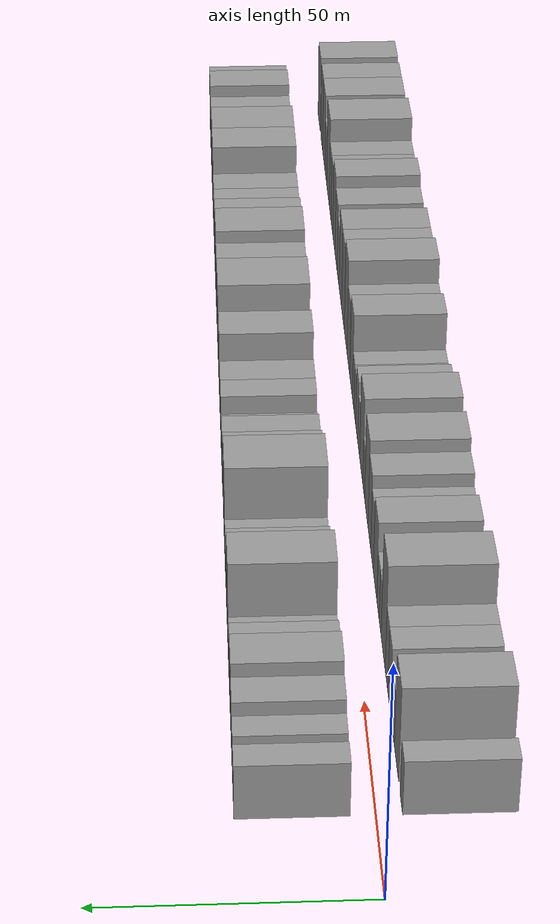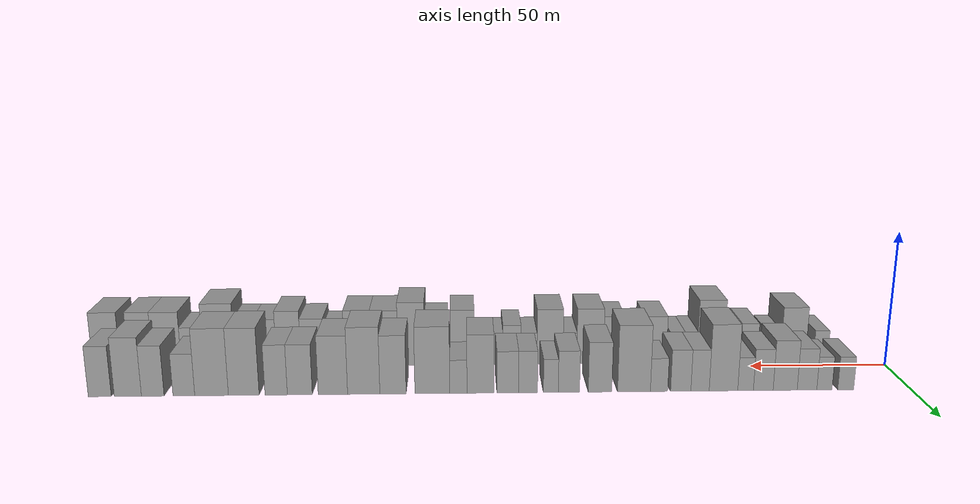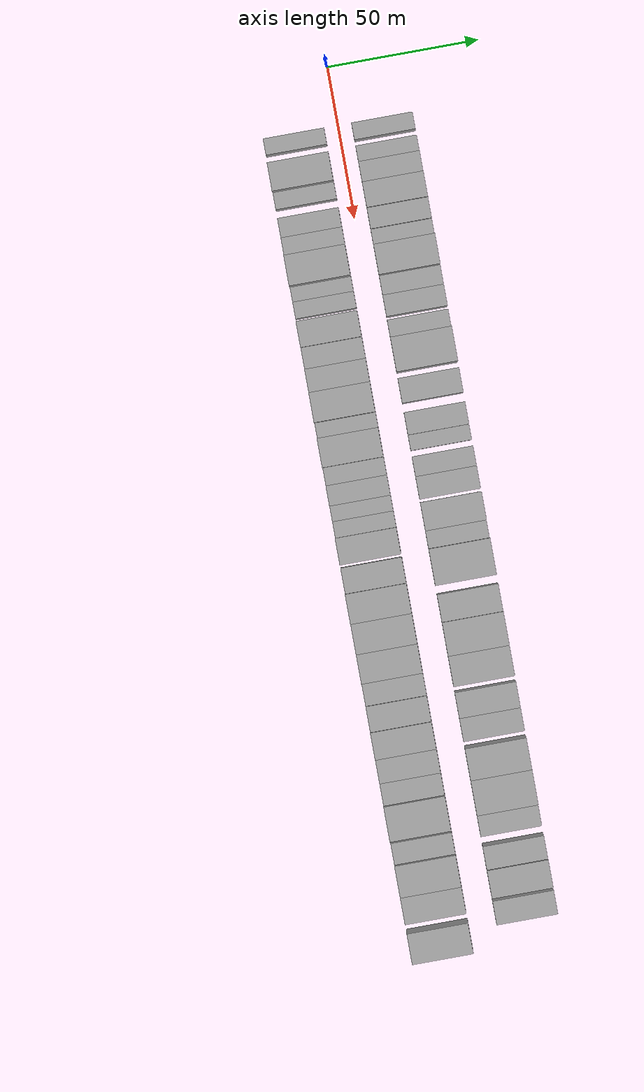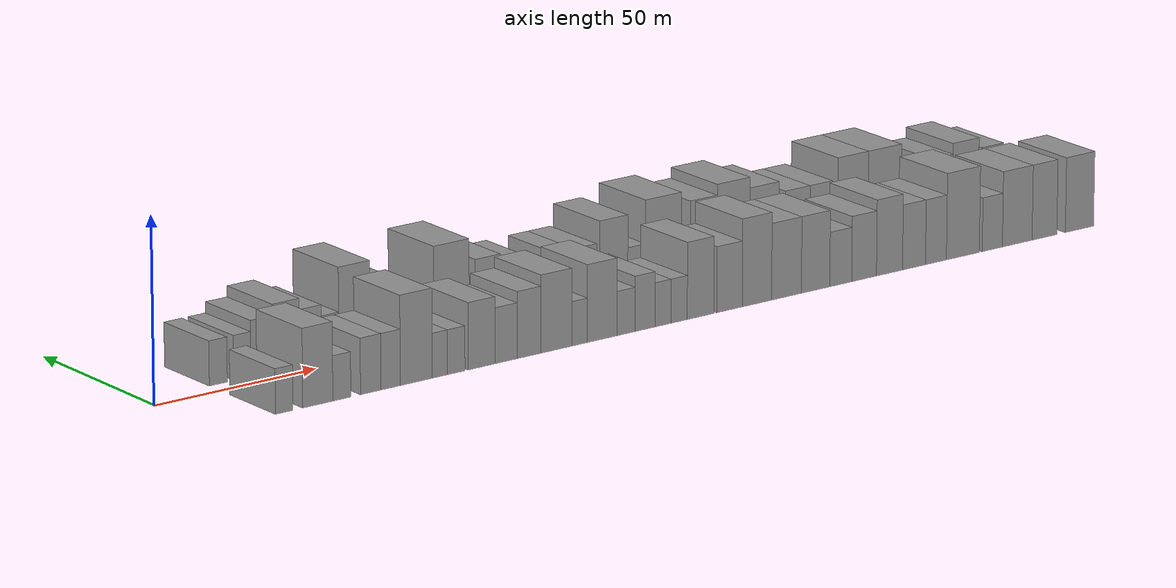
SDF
<sdf version="1.6">
 <world name="default">
  <scene>
   <sky><clouds><speed>12</speed></clouds></sky>
   <ambient>0.4 0.4 0.4 1</ambient>
   <background>0.7 0.7 0.7 1</background>
   <shadows>1</shadows>
  </scene>
  <gravity>0 0 -9.8066</gravity>
  <magnetic_field>6e-06 2.3e-05 -4.2e-05</magnetic_field>
  <physics default="0" name="default_physics" type="ode">
   <ode>
    <solver>
     <type>quick</type>
     <iters>10</iters>
     <sor>1.0</sor>
     <use_dynamic_moi_rescaling>0</use_dynamic_moi_rescaling>
    </solver>
    <constraints>
     <cfm>0</cfm>
     <erp>0.2</erp>
     <contact_max_correcting_vel>100</contact_max_correcting_vel>
     <contact_surface_layer>0.001</contact_surface_layer>
    </constraints>
   </ode>
   <max_step_size>0.004</max_step_size>
   <real_time_factor>1</real_time_factor>
   <real_time_update_rate>250</real_time_update_rate>
  </physics>
  <light name="sun" type="directional">
   <pose>0 0 10 0 0 0</pose>
   <diffuse>0.8 0.8 0.8 1</diffuse>
   <specular>0.2 0.2 0.2 1</specular>
   <attenuation>
    <range>1000</range>
    <constant>0.9</constant>
    <linear>0.01</linear>
    <quadratic>0.001</quadratic>
   </attenuation>
   <direction>-0.5 0.1 -0.9</direction>
  </light>
  <model name="building_1">
   <static>1</static>
   <pose>22.7822 14.5000 0 0.000000 0.000000 1.570796</pose>
   <link name="link">
    <pose>0 0 6.00 0 0 0</pose>
    <collision name="collision"><geometry><box><size>20.0000 5.5644 12.0000</size></box></geometry></collision>
    <visual name="visual">
     <cast_shadows>0</cast_shadows>
     <geometry><box><size>20.0000 5.5644 12.0000</size></box></geometry>
     <material>
      <script>
       <uri>model://grey_wall/materials/scripts</uri>
       <uri>model://grey_wall/materials/textures</uri>
       <name>vrc/grey_wall</name>
      </script>
     </material>
    </visual>
   </link>
  </model>
  <model name="building_2">
   <static>1</static>
   <pose>30.2250 14.5000 0 0.000000 0.000000 1.570796</pose>
   <link name="link">
    <pose>0 0 6.00 0 0 0</pose>
    <collision name="collision"><geometry><box><size>20.0000 5.3212 12.0000</size></box></geometry></collision>
    <visual name="visual">
     <cast_shadows>0</cast_shadows>
     <geometry><box><size>20.0000 5.3212 12.0000</size></box></geometry>
     <material>
      <script>
       <uri>model://grey_wall/materials/scripts</uri>
       <uri>model://grey_wall/materials/textures</uri>
       <name>vrc/grey_wall</name>
      </script>
     </material>
    </visual>
   </link>
  </model>
  <model name="building_3">
   <static>1</static>
   <pose>36.3001 14.5000 0 0.000000 0.000000 1.570796</pose>
   <link name="link">
    <pose>0 0 7.50 0 0 0</pose>
    <collision name="collision"><geometry><box><size>20.0000 6.8291 15.0000</size></box></geometry></collision>
    <visual name="visual">
     <cast_shadows>0</cast_shadows>
     <geometry><box><size>20.0000 6.8291 15.0000</size></box></geometry>
     <material>
      <script>
       <uri>model://grey_wall/materials/scripts</uri>
       <uri>model://grey_wall/materials/textures</uri>
       <name>vrc/grey_wall</name>
      </script>
     </material>
    </visual>
   </link>
  </model>
  <model name="building_4">
   <static>1</static>
   <pose>43.8990 14.5000 0 0.000000 0.000000 1.570796</pose>
   <link name="link">
    <pose>0 0 9.00 0 0 0</pose>
    <collision name="collision"><geometry><box><size>20.0000 8.3686 18.0000</size></box></geometry></collision>
    <visual name="visual">
     <cast_shadows>0</cast_shadows>
     <geometry><box><size>20.0000 8.3686 18.0000</size></box></geometry>
     <material>
      <script>
       <uri>model://grey_wall/materials/scripts</uri>
       <uri>model://grey_wall/materials/textures</uri>
       <name>vrc/grey_wall</name>
      </script>
     </material>
    </visual>
   </link>
  </model>
  <model name="building_5">
   <static>1</static>
   <pose>51.5162 14.5000 0 0.000000 0.000000 1.570796</pose>
   <link name="link">
    <pose>0 0 7.50 0 0 0</pose>
    <collision name="collision"><geometry><box><size>20.0000 6.8658 15.0000</size></box></geometry></collision>
    <visual name="visual">
     <cast_shadows>0</cast_shadows>
     <geometry><box><size>20.0000 6.8658 15.0000</size></box></geometry>
     <material>
      <script>
       <uri>model://grey_wall/materials/scripts</uri>
       <uri>model://grey_wall/materials/textures</uri>
       <name>vrc/grey_wall</name>
      </script>
     </material>
    </visual>
   </link>
  </model>
  <model name="building_6">
   <static>1</static>
   <pose>57.6712 14.5000 0 0.000000 0.000000 1.570796</pose>
   <link name="link">
    <pose>0 0 6.00 0 0 0</pose>
    <collision name="collision"><geometry><box><size>20.0000 5.4442 12.0000</size></box></geometry></collision>
    <visual name="visual">
     <cast_shadows>0</cast_shadows>
     <geometry><box><size>20.0000 5.4442 12.0000</size></box></geometry>
     <material>
      <script>
       <uri>model://grey_wall/materials/scripts</uri>
       <uri>model://grey_wall/materials/textures</uri>
       <name>vrc/grey_wall</name>
      </script>
     </material>
    </visual>
   </link>
  </model>
  <model name="building_7">
   <static>1</static>
   <pose>65.3493 14.5000 0 0.000000 0.000000 1.570796</pose>
   <link name="link">
    <pose>0 0 12.00 0 0 0</pose>
    <collision name="collision"><geometry><box><size>20.0000 9.9121 24.0000</size></box></geometry></collision>
    <visual name="visual">
     <cast_shadows>0</cast_shadows>
     <geometry><box><size>20.0000 9.9121 24.0000</size></box></geometry>
     <material>
      <script>
       <uri>model://grey_wall/materials/scripts</uri>
       <uri>model://grey_wall/materials/textures</uri>
       <name>vrc/grey_wall</name>
      </script>
     </material>
    </visual>
   </link>
  </model>
  <model name="building_8">
   <static>1</static>
   <pose>73.4739 14.5000 0 0.000000 0.000000 1.570796</pose>
   <link name="link">
    <pose>0 0 7.50 0 0 0</pose>
    <collision name="collision"><geometry><box><size>20.0000 6.3371 15.0000</size></box></geometry></collision>
    <visual name="visual">
     <cast_shadows>0</cast_shadows>
     <geometry><box><size>20.0000 6.3371 15.0000</size></box></geometry>
     <material>
      <script>
       <uri>model://grey_wall/materials/scripts</uri>
       <uri>model://grey_wall/materials/textures</uri>
       <name>vrc/grey_wall</name>
      </script>
     </material>
    </visual>
   </link>
  </model>
  <model name="building_9">
   <static>1</static>
   <pose>80.1584 14.5000 0 0.000000 0.000000 1.570796</pose>
   <link name="link">
    <pose>0 0 7.50 0 0 0</pose>
    <collision name="collision"><geometry><box><size>20.0000 7.0319 15.0000</size></box></geometry></collision>
    <visual name="visual">
     <cast_shadows>0</cast_shadows>
     <geometry><box><size>20.0000 7.0319 15.0000</size></box></geometry>
     <material>
      <script>
       <uri>model://grey_wall/materials/scripts</uri>
       <uri>model://grey_wall/materials/textures</uri>
       <name>vrc/grey_wall</name>
      </script>
     </material>
    </visual>
   </link>
  </model>
  <model name="building_10">
   <static>1</static>
   <pose>87.6701 14.5000 0 0.000000 0.000000 1.570796</pose>
   <link name="link">
    <pose>0 0 6.00 0 0 0</pose>
    <collision name="collision"><geometry><box><size>20.0000 5.9915 12.0000</size></box></geometry></collision>
    <visual name="visual">
     <cast_shadows>0</cast_shadows>
     <geometry><box><size>20.0000 5.9915 12.0000</size></box></geometry>
     <material>
      <script>
       <uri>model://grey_wall/materials/scripts</uri>
       <uri>model://grey_wall/materials/textures</uri>
       <name>vrc/grey_wall</name>
      </script>
     </material>
    </visual>
   </link>
  </model>
  <model name="building_11">
   <static>1</static>
   <pose>96.3384 14.5000 0 0.000000 0.000000 1.570796</pose>
   <link name="link">
    <pose>0 0 12.00 0 0 0</pose>
    <collision name="collision"><geometry><box><size>20.0000 11.3453 24.0000</size></box></geometry></collision>
    <visual name="visual">
     <cast_shadows>0</cast_shadows>
     <geometry><box><size>20.0000 11.3453 24.0000</size></box></geometry>
     <material>
      <script>
       <uri>model://grey_wall/materials/scripts</uri>
       <uri>model://grey_wall/materials/textures</uri>
       <name>vrc/grey_wall</name>
      </script>
     </material>
    </visual>
   </link>
  </model>
  <model name="building_12">
   <static>1</static>
   <pose>108.0705 14.5000 0 0.000000 0.000000 1.570796</pose>
   <link name="link">
    <pose>0 0 9.00 0 0 0</pose>
    <collision name="collision"><geometry><box><size>20.0000 8.1189 18.0000</size></box></geometry></collision>
    <visual name="visual">
     <cast_shadows>0</cast_shadows>
     <geometry><box><size>20.0000 8.1189 18.0000</size></box></geometry>
     <material>
      <script>
       <uri>model://grey_wall/materials/scripts</uri>
       <uri>model://grey_wall/materials/textures</uri>
       <name>vrc/grey_wall</name>
      </script>
     </material>
    </visual>
   </link>
  </model>
  <model name="building_13">
   <static>1</static>
   <pose>118.8091 14.5000 0 0.000000 0.000000 1.570796</pose>
   <link name="link">
    <pose>0 0 7.50 0 0 0</pose>
    <collision name="collision"><geometry><box><size>20.0000 7.3583 15.0000</size></box></geometry></collision>
    <visual name="visual">
     <cast_shadows>0</cast_shadows>
     <geometry><box><size>20.0000 7.3583 15.0000</size></box></geometry>
     <material>
      <script>
       <uri>model://grey_wall/materials/scripts</uri>
       <uri>model://grey_wall/materials/textures</uri>
       <name>vrc/grey_wall</name>
      </script>
     </material>
    </visual>
   </link>
  </model>
  <model name="building_14">
   <static>1</static>
   <pose>125.0495 14.5000 0 0.000000 0.000000 1.570796</pose>
   <link name="link">
    <pose>0 0 6.00 0 0 0</pose>
    <collision name="collision"><geometry><box><size>20.0000 5.1225 12.0000</size></box></geometry></collision>
    <visual name="visual">
     <cast_shadows>0</cast_shadows>
     <geometry><box><size>20.0000 5.1225 12.0000</size></box></geometry>
     <material>
      <script>
       <uri>model://grey_wall/materials/scripts</uri>
       <uri>model://grey_wall/materials/textures</uri>
       <name>vrc/grey_wall</name>
      </script>
     </material>
    </visual>
   </link>
  </model>
  <model name="building_15">
   <static>1</static>
   <pose>132.8658 14.5000 0 0.000000 0.000000 1.570796</pose>
   <link name="link">
    <pose>0 0 7.50 0 0 0</pose>
    <collision name="collision"><geometry><box><size>20.0000 6.5102 15.0000</size></box></geometry></collision>
    <visual name="visual">
     <cast_shadows>0</cast_shadows>
     <geometry><box><size>20.0000 6.5102 15.0000</size></box></geometry>
     <material>
      <script>
       <uri>model://grey_wall/materials/scripts</uri>
       <uri>model://grey_wall/materials/textures</uri>
       <name>vrc/grey_wall</name>
      </script>
     </material>
    </visual>
   </link>
  </model>
  <model name="building_16">
   <static>1</static>
   <pose>139.8515 14.5000 0 0.000000 0.000000 1.570796</pose>
   <link name="link">
    <pose>0 0 7.50 0 0 0</pose>
    <collision name="collision"><geometry><box><size>20.0000 7.4613 15.0000</size></box></geometry></collision>
    <visual name="visual">
     <cast_shadows>0</cast_shadows>
     <geometry><box><size>20.0000 7.4613 15.0000</size></box></geometry>
     <material>
      <script>
       <uri>model://grey_wall/materials/scripts</uri>
       <uri>model://grey_wall/materials/textures</uri>
       <name>vrc/grey_wall</name>
      </script>
     </material>
    </visual>
   </link>
  </model>
  <model name="building_17">
   <static>1</static>
   <pose>149.2267 14.5000 0 0.000000 0.000000 1.570796</pose>
   <link name="link">
    <pose>0 0 10.50 0 0 0</pose>
    <collision name="collision"><geometry><box><size>20.0000 9.2890 21.0000</size></box></geometry></collision>
    <visual name="visual">
     <cast_shadows>0</cast_shadows>
     <geometry><box><size>20.0000 9.2890 21.0000</size></box></geometry>
     <material>
      <script>
       <uri>model://grey_wall/materials/scripts</uri>
       <uri>model://grey_wall/materials/textures</uri>
       <name>vrc/grey_wall</name>
      </script>
     </material>
    </visual>
   </link>
  </model>
  <model name="building_18">
   <static>1</static>
   <pose>156.8171 14.5000 0 0.000000 0.000000 1.570796</pose>
   <link name="link">
    <pose>0 0 6.00 0 0 0</pose>
    <collision name="collision"><geometry><box><size>20.0000 5.8918 12.0000</size></box></geometry></collision>
    <visual name="visual">
     <cast_shadows>0</cast_shadows>
     <geometry><box><size>20.0000 5.8918 12.0000</size></box></geometry>
     <material>
      <script>
       <uri>model://grey_wall/materials/scripts</uri>
       <uri>model://grey_wall/materials/textures</uri>
       <name>vrc/grey_wall</name>
      </script>
     </material>
    </visual>
   </link>
  </model>
  <model name="building_19">
   <static>1</static>
   <pose>165.7413 14.5000 0 0.000000 0.000000 1.570796</pose>
   <link name="link">
    <pose>0 0 12.00 0 0 0</pose>
    <collision name="collision"><geometry><box><size>20.0000 11.9566 24.0000</size></box></geometry></collision>
    <visual name="visual">
     <cast_shadows>0</cast_shadows>
     <geometry><box><size>20.0000 11.9566 24.0000</size></box></geometry>
     <material>
      <script>
       <uri>model://grey_wall/materials/scripts</uri>
       <uri>model://grey_wall/materials/textures</uri>
       <name>vrc/grey_wall</name>
      </script>
     </material>
    </visual>
   </link>
  </model>
  <model name="building_20">
   <static>1</static>
   <pose>179.2212 14.5000 0 0.000000 0.000000 1.570796</pose>
   <link name="link">
    <pose>0 0 10.50 0 0 0</pose>
    <collision name="collision"><geometry><box><size>20.0000 9.0032 21.0000</size></box></geometry></collision>
    <visual name="visual">
     <cast_shadows>0</cast_shadows>
     <geometry><box><size>20.0000 9.0032 21.0000</size></box></geometry>
     <material>
      <script>
       <uri>model://grey_wall/materials/scripts</uri>
       <uri>model://grey_wall/materials/textures</uri>
       <name>vrc/grey_wall</name>
      </script>
     </material>
    </visual>
   </link>
  </model>
  <model name="building_21">
   <static>1</static>
   <pose>189.2372 14.5000 0 0.000000 0.000000 1.570796</pose>
   <link name="link">
    <pose>0 0 12.00 0 0 0</pose>
    <collision name="collision"><geometry><box><size>20.0000 11.0289 24.0000</size></box></geometry></collision>
    <visual name="visual">
     <cast_shadows>0</cast_shadows>
     <geometry><box><size>20.0000 11.0289 24.0000</size></box></geometry>
     <material>
      <script>
       <uri>model://grey_wall/materials/scripts</uri>
       <uri>model://grey_wall/materials/textures</uri>
       <name>vrc/grey_wall</name>
      </script>
     </material>
    </visual>
   </link>
  </model>
  <model name="building_22">
   <static>1</static>
   <pose>199.7666 14.5000 0 0.000000 0.000000 1.570796</pose>
   <link name="link">
    <pose>0 0 10.50 0 0 0</pose>
    <collision name="collision"><geometry><box><size>20.0000 10.0298 21.0000</size></box></geometry></collision>
    <visual name="visual">
     <cast_shadows>0</cast_shadows>
     <geometry><box><size>20.0000 10.0298 21.0000</size></box></geometry>
     <material>
      <script>
       <uri>model://grey_wall/materials/scripts</uri>
       <uri>model://grey_wall/materials/textures</uri>
       <name>vrc/grey_wall</name>
      </script>
     </material>
    </visual>
   </link>
  </model>
  <model name="building_23">
   <static>1</static>
   <pose>211.0317 14.5000 0 0.000000 0.000000 1.570796</pose>
   <link name="link">
    <pose>0 0 9.00 0 0 0</pose>
    <collision name="collision"><geometry><box><size>20.0000 8.5003 18.0000</size></box></geometry></collision>
    <visual name="visual">
     <cast_shadows>0</cast_shadows>
     <geometry><box><size>20.0000 8.5003 18.0000</size></box></geometry>
     <material>
      <script>
       <uri>model://grey_wall/materials/scripts</uri>
       <uri>model://grey_wall/materials/textures</uri>
       <name>vrc/grey_wall</name>
      </script>
     </material>
    </visual>
   </link>
  </model>
  <model name="building_24">
   <static>1</static>
   <pose>219.0821 14.5000 0 0.000000 0.000000 1.570796</pose>
   <link name="link">
    <pose>0 0 9.00 0 0 0</pose>
    <collision name="collision"><geometry><box><size>20.0000 7.6005 18.0000</size></box></geometry></collision>
    <visual name="visual">
     <cast_shadows>0</cast_shadows>
     <geometry><box><size>20.0000 7.6005 18.0000</size></box></geometry>
     <material>
      <script>
       <uri>model://grey_wall/materials/scripts</uri>
       <uri>model://grey_wall/materials/textures</uri>
       <name>vrc/grey_wall</name>
      </script>
     </material>
    </visual>
   </link>
  </model>
  <model name="building_25">
   <static>1</static>
   <pose>230.1089 14.5000 0 0.000000 0.000000 1.570796</pose>
   <link name="link">
    <pose>0 0 12.00 0 0 0</pose>
    <collision name="collision"><geometry><box><size>20.0000 10.4532 24.0000</size></box></geometry></collision>
    <visual name="visual">
     <cast_shadows>0</cast_shadows>
     <geometry><box><size>20.0000 10.4532 24.0000</size></box></geometry>
     <material>
      <script>
       <uri>model://grey_wall/materials/scripts</uri>
       <uri>model://grey_wall/materials/textures</uri>
       <name>vrc/grey_wall</name>
      </script>
     </material>
    </visual>
   </link>
  </model>
  <model name="building_26">
   <static>1</static>
   <pose>241.0479 14.5000 0 0.000000 0.000000 1.570796</pose>
   <link name="link">
    <pose>0 0 12.00 0 0 0</pose>
    <collision name="collision"><geometry><box><size>20.0000 11.4248 24.0000</size></box></geometry></collision>
    <visual name="visual">
     <cast_shadows>0</cast_shadows>
     <geometry><box><size>20.0000 11.4248 24.0000</size></box></geometry>
     <material>
      <script>
       <uri>model://grey_wall/materials/scripts</uri>
       <uri>model://grey_wall/materials/textures</uri>
       <name>vrc/grey_wall</name>
      </script>
     </material>
    </visual>
   </link>
  </model>
  <model name="building_27">
   <static>1</static>
   <pose>250.4484 14.5000 0 0.000000 0.000000 1.570796</pose>
   <link name="link">
    <pose>0 0 7.50 0 0 0</pose>
    <collision name="collision"><geometry><box><size>20.0000 7.3761 15.0000</size></box></geometry></collision>
    <visual name="visual">
     <cast_shadows>0</cast_shadows>
     <geometry><box><size>20.0000 7.3761 15.0000</size></box></geometry>
     <material>
      <script>
       <uri>model://grey_wall/materials/scripts</uri>
       <uri>model://grey_wall/materials/textures</uri>
       <name>vrc/grey_wall</name>
      </script>
     </material>
    </visual>
   </link>
  </model>
  <model name="building_28">
   <static>1</static>
   <pose>260.9795 14.5000 0 0.000000 0.000000 1.570796</pose>
   <link name="link">
    <pose>0 0 9.00 0 0 0</pose>
    <collision name="collision"><geometry><box><size>20.0000 7.6862 18.0000</size></box></geometry></collision>
    <visual name="visual">
     <cast_shadows>0</cast_shadows>
     <geometry><box><size>20.0000 7.6862 18.0000</size></box></geometry>
     <material>
      <script>
       <uri>model://grey_wall/materials/scripts</uri>
       <uri>model://grey_wall/materials/textures</uri>
       <name>vrc/grey_wall</name>
      </script>
     </material>
    </visual>
   </link>
  </model>
  <model name="building_29">
   <static>1</static>
   <pose>269.4135 14.5000 0 0.000000 0.000000 1.570796</pose>
   <link name="link">
    <pose>0 0 10.50 0 0 0</pose>
    <collision name="collision"><geometry><box><size>20.0000 9.1818 21.0000</size></box></geometry></collision>
    <visual name="visual">
     <cast_shadows>0</cast_shadows>
     <geometry><box><size>20.0000 9.1818 21.0000</size></box></geometry>
     <material>
      <script>
       <uri>model://grey_wall/materials/scripts</uri>
       <uri>model://grey_wall/materials/textures</uri>
       <name>vrc/grey_wall</name>
      </script>
     </material>
    </visual>
   </link>
  </model>
  <model name="building_30">
   <static>1</static>
   <pose>278.8989 14.5000 0 0.000000 0.000000 1.570796</pose>
   <link name="link">
    <pose>0 0 9.00 0 0 0</pose>
    <collision name="collision"><geometry><box><size>20.0000 7.7890 18.0000</size></box></geometry></collision>
    <visual name="visual">
     <cast_shadows>0</cast_shadows>
     <geometry><box><size>20.0000 7.7890 18.0000</size></box></geometry>
     <material>
      <script>
       <uri>model://grey_wall/materials/scripts</uri>
       <uri>model://grey_wall/materials/textures</uri>
       <name>vrc/grey_wall</name>
      </script>
     </material>
    </visual>
   </link>
  </model>
  <model name="building_31">
   <static>1</static>
   <pose>22.6875 -14.5000 0 0.000000 0.000000 1.570796</pose>
   <link name="link">
    <pose>0 0 6.00 0 0 0</pose>
    <collision name="collision"><geometry><box><size>20.0000 5.3750 12.0000</size></box></geometry></collision>
    <visual name="visual">
     <cast_shadows>0</cast_shadows>
     <geometry><box><size>20.0000 5.3750 12.0000</size></box></geometry>
     <material>
      <script>
       <uri>model://grey_wall/materials/scripts</uri>
       <uri>model://grey_wall/materials/textures</uri>
       <name>vrc/grey_wall</name>
      </script>
     </material>
    </visual>
   </link>
  </model>
  <model name="building_32">
   <static>1</static>
   <pose>33.0298 -14.5000 0 0.000000 0.000000 1.570796</pose>
   <link name="link">
    <pose>0 0 10.50 0 0 0</pose>
    <collision name="collision"><geometry><box><size>20.0000 9.3095 21.0000</size></box></geometry></collision>
    <visual name="visual">
     <cast_shadows>0</cast_shadows>
     <geometry><box><size>20.0000 9.3095 21.0000</size></box></geometry>
     <material>
      <script>
       <uri>model://grey_wall/materials/scripts</uri>
       <uri>model://grey_wall/materials/textures</uri>
       <name>vrc/grey_wall</name>
      </script>
     </material>
    </visual>
   </link>
  </model>
  <model name="building_33">
   <static>1</static>
   <pose>40.4763 -14.5000 0 0.000000 0.000000 1.570796</pose>
   <link name="link">
    <pose>0 0 6.00 0 0 0</pose>
    <collision name="collision"><geometry><box><size>20.0000 5.5835 12.0000</size></box></geometry></collision>
    <visual name="visual">
     <cast_shadows>0</cast_shadows>
     <geometry><box><size>20.0000 5.5835 12.0000</size></box></geometry>
     <material>
      <script>
       <uri>model://grey_wall/materials/scripts</uri>
       <uri>model://grey_wall/materials/textures</uri>
       <name>vrc/grey_wall</name>
      </script>
     </material>
    </visual>
   </link>
  </model>
  <model name="building_34">
   <static>1</static>
   <pose>49.4508 -14.5000 0 0.000000 0.000000 1.570796</pose>
   <link name="link">
    <pose>0 0 7.50 0 0 0</pose>
    <collision name="collision"><geometry><box><size>20.0000 6.3654 15.0000</size></box></geometry></collision>
    <visual name="visual">
     <cast_shadows>0</cast_shadows>
     <geometry><box><size>20.0000 6.3654 15.0000</size></box></geometry>
     <material>
      <script>
       <uri>model://grey_wall/materials/scripts</uri>
       <uri>model://grey_wall/materials/textures</uri>
       <name>vrc/grey_wall</name>
      </script>
     </material>
    </visual>
   </link>
  </model>
  <model name="building_35">
   <static>1</static>
   <pose>55.6655 -14.5000 0 0.000000 0.000000 1.570796</pose>
   <link name="link">
    <pose>0 0 7.50 0 0 0</pose>
    <collision name="collision"><geometry><box><size>20.0000 6.0639 15.0000</size></box></geometry></collision>
    <visual name="visual">
     <cast_shadows>0</cast_shadows>
     <geometry><box><size>20.0000 6.0639 15.0000</size></box></geometry>
     <material>
      <script>
       <uri>model://grey_wall/materials/scripts</uri>
       <uri>model://grey_wall/materials/textures</uri>
       <name>vrc/grey_wall</name>
      </script>
     </material>
    </visual>
   </link>
  </model>
  <model name="building_36">
   <static>1</static>
   <pose>63.7244 -14.5000 0 0.000000 0.000000 1.570796</pose>
   <link name="link">
    <pose>0 0 12.00 0 0 0</pose>
    <collision name="collision"><geometry><box><size>20.0000 10.0539 24.0000</size></box></geometry></collision>
    <visual name="visual">
     <cast_shadows>0</cast_shadows>
     <geometry><box><size>20.0000 10.0539 24.0000</size></box></geometry>
     <material>
      <script>
       <uri>model://grey_wall/materials/scripts</uri>
       <uri>model://grey_wall/materials/textures</uri>
       <name>vrc/grey_wall</name>
      </script>
     </material>
    </visual>
   </link>
  </model>
  <model name="building_37">
   <static>1</static>
   <pose>71.1729 -14.5000 0 0.000000 0.000000 1.570796</pose>
   <link name="link">
    <pose>0 0 6.00 0 0 0</pose>
    <collision name="collision"><geometry><box><size>20.0000 4.8432 12.0000</size></box></geometry></collision>
    <visual name="visual">
     <cast_shadows>0</cast_shadows>
     <geometry><box><size>20.0000 4.8432 12.0000</size></box></geometry>
     <material>
      <script>
       <uri>model://grey_wall/materials/scripts</uri>
       <uri>model://grey_wall/materials/textures</uri>
       <name>vrc/grey_wall</name>
      </script>
     </material>
    </visual>
   </link>
  </model>
  <model name="building_38">
   <static>1</static>
   <pose>76.3586 -14.5000 0 0.000000 0.000000 1.570796</pose>
   <link name="link">
    <pose>0 0 6.00 0 0 0</pose>
    <collision name="collision"><geometry><box><size>20.0000 5.5283 12.0000</size></box></geometry></collision>
    <visual name="visual">
     <cast_shadows>0</cast_shadows>
     <geometry><box><size>20.0000 5.5283 12.0000</size></box></geometry>
     <material>
      <script>
       <uri>model://grey_wall/materials/scripts</uri>
       <uri>model://grey_wall/materials/textures</uri>
       <name>vrc/grey_wall</name>
      </script>
     </material>
    </visual>
   </link>
  </model>
  <model name="building_39">
   <static>1</static>
   <pose>84.3879 -14.5000 0 0.000000 0.000000 1.570796</pose>
   <link name="link">
    <pose>0 0 9.00 0 0 0</pose>
    <collision name="collision"><geometry><box><size>20.0000 8.5303 18.0000</size></box></geometry></collision>
    <visual name="visual">
     <cast_shadows>0</cast_shadows>
     <geometry><box><size>20.0000 8.5303 18.0000</size></box></geometry>
     <material>
      <script>
       <uri>model://grey_wall/materials/scripts</uri>
       <uri>model://grey_wall/materials/textures</uri>
       <name>vrc/grey_wall</name>
      </script>
     </material>
    </visual>
   </link>
  </model>
  <model name="building_40">
   <static>1</static>
   <pose>92.1998 -14.5000 0 0.000000 0.000000 1.570796</pose>
   <link name="link">
    <pose>0 0 7.50 0 0 0</pose>
    <collision name="collision"><geometry><box><size>20.0000 7.0936 15.0000</size></box></geometry></collision>
    <visual name="visual">
     <cast_shadows>0</cast_shadows>
     <geometry><box><size>20.0000 7.0936 15.0000</size></box></geometry>
     <material>
      <script>
       <uri>model://grey_wall/materials/scripts</uri>
       <uri>model://grey_wall/materials/textures</uri>
       <name>vrc/grey_wall</name>
      </script>
     </material>
    </visual>
   </link>
  </model>
  <model name="building_41">
   <static>1</static>
   <pose>99.5933 -14.5000 0 0.000000 0.000000 1.570796</pose>
   <link name="link">
    <pose>0 0 9.00 0 0 0</pose>
    <collision name="collision"><geometry><box><size>20.0000 7.6934 18.0000</size></box></geometry></collision>
    <visual name="visual">
     <cast_shadows>0</cast_shadows>
     <geometry><box><size>20.0000 7.6934 18.0000</size></box></geometry>
     <material>
      <script>
       <uri>model://grey_wall/materials/scripts</uri>
       <uri>model://grey_wall/materials/textures</uri>
       <name>vrc/grey_wall</name>
      </script>
     </material>
    </visual>
   </link>
  </model>
  <model name="building_42">
   <static>1</static>
   <pose>108.3653 -14.5000 0 0.000000 0.000000 1.570796</pose>
   <link name="link">
    <pose>0 0 10.50 0 0 0</pose>
    <collision name="collision"><geometry><box><size>20.0000 9.8505 21.0000</size></box></geometry></collision>
    <visual name="visual">
     <cast_shadows>0</cast_shadows>
     <geometry><box><size>20.0000 9.8505 21.0000</size></box></geometry>
     <material>
      <script>
       <uri>model://grey_wall/materials/scripts</uri>
       <uri>model://grey_wall/materials/textures</uri>
       <name>vrc/grey_wall</name>
      </script>
     </material>
    </visual>
   </link>
  </model>
  <model name="building_43">
   <static>1</static>
   <pose>115.8413 -14.5000 0 0.000000 0.000000 1.570796</pose>
   <link name="link">
    <pose>0 0 6.00 0 0 0</pose>
    <collision name="collision"><geometry><box><size>20.0000 5.1016 12.0000</size></box></geometry></collision>
    <visual name="visual">
     <cast_shadows>0</cast_shadows>
     <geometry><box><size>20.0000 5.1016 12.0000</size></box></geometry>
     <material>
      <script>
       <uri>model://grey_wall/materials/scripts</uri>
       <uri>model://grey_wall/materials/textures</uri>
       <name>vrc/grey_wall</name>
      </script>
     </material>
    </visual>
   </link>
  </model>
  <model name="building_44">
   <static>1</static>
   <pose>123.1983 -14.5000 0 0.000000 0.000000 1.570796</pose>
   <link name="link">
    <pose>0 0 10.50 0 0 0</pose>
    <collision name="collision"><geometry><box><size>20.0000 9.6125 21.0000</size></box></geometry></collision>
    <visual name="visual">
     <cast_shadows>0</cast_shadows>
     <geometry><box><size>20.0000 9.6125 21.0000</size></box></geometry>
     <material>
      <script>
       <uri>model://grey_wall/materials/scripts</uri>
       <uri>model://grey_wall/materials/textures</uri>
       <name>vrc/grey_wall</name>
      </script>
     </material>
    </visual>
   </link>
  </model>
  <model name="building_45">
   <static>1</static>
   <pose>130.9449 -14.5000 0 0.000000 0.000000 1.570796</pose>
   <link name="link">
    <pose>0 0 6.00 0 0 0</pose>
    <collision name="collision"><geometry><box><size>20.0000 5.8807 12.0000</size></box></geometry></collision>
    <visual name="visual">
     <cast_shadows>0</cast_shadows>
     <geometry><box><size>20.0000 5.8807 12.0000</size></box></geometry>
     <material>
      <script>
       <uri>model://grey_wall/materials/scripts</uri>
       <uri>model://grey_wall/materials/textures</uri>
       <name>vrc/grey_wall</name>
      </script>
     </material>
    </visual>
   </link>
  </model>
  <model name="building_46">
   <static>1</static>
   <pose>137.2052 -14.5000 0 0.000000 0.000000 1.570796</pose>
   <link name="link">
    <pose>0 0 7.50 0 0 0</pose>
    <collision name="collision"><geometry><box><size>20.0000 6.6397 15.0000</size></box></geometry></collision>
    <visual name="visual">
     <cast_shadows>0</cast_shadows>
     <geometry><box><size>20.0000 6.6397 15.0000</size></box></geometry>
     <material>
      <script>
       <uri>model://grey_wall/materials/scripts</uri>
       <uri>model://grey_wall/materials/textures</uri>
       <name>vrc/grey_wall</name>
      </script>
     </material>
    </visual>
   </link>
  </model>
  <model name="building_47">
   <static>1</static>
   <pose>143.0954 -14.5000 0 0.000000 0.000000 1.570796</pose>
   <link name="link">
    <pose>0 0 6.00 0 0 0</pose>
    <collision name="collision"><geometry><box><size>20.0000 5.1407 12.0000</size></box></geometry></collision>
    <visual name="visual">
     <cast_shadows>0</cast_shadows>
     <geometry><box><size>20.0000 5.1407 12.0000</size></box></geometry>
     <material>
      <script>
       <uri>model://grey_wall/materials/scripts</uri>
       <uri>model://grey_wall/materials/textures</uri>
       <name>vrc/grey_wall</name>
      </script>
     </material>
    </visual>
   </link>
  </model>
  <model name="building_48">
   <static>1</static>
   <pose>148.3565 -14.5000 0 0.000000 0.000000 1.570796</pose>
   <link name="link">
    <pose>0 0 6.00 0 0 0</pose>
    <collision name="collision"><geometry><box><size>20.0000 5.3815 12.0000</size></box></geometry></collision>
    <visual name="visual">
     <cast_shadows>0</cast_shadows>
     <geometry><box><size>20.0000 5.3815 12.0000</size></box></geometry>
     <material>
      <script>
       <uri>model://grey_wall/materials/scripts</uri>
       <uri>model://grey_wall/materials/textures</uri>
       <name>vrc/grey_wall</name>
      </script>
     </material>
    </visual>
   </link>
  </model>
  <model name="building_49">
   <static>1</static>
   <pose>155.4317 -14.5000 0 0.000000 0.000000 1.570796</pose>
   <link name="link">
    <pose>0 0 10.50 0 0 0</pose>
    <collision name="collision"><geometry><box><size>20.0000 8.7690 21.0000</size></box></geometry></collision>
    <visual name="visual">
     <cast_shadows>0</cast_shadows>
     <geometry><box><size>20.0000 8.7690 21.0000</size></box></geometry>
     <material>
      <script>
       <uri>model://grey_wall/materials/scripts</uri>
       <uri>model://grey_wall/materials/textures</uri>
       <name>vrc/grey_wall</name>
      </script>
     </material>
    </visual>
   </link>
  </model>
  <model name="building_50">
   <static>1</static>
   <pose>165.0550 -14.5000 0 0.000000 0.000000 1.570796</pose>
   <link name="link">
    <pose>0 0 9.00 0 0 0</pose>
    <collision name="collision"><geometry><box><size>20.0000 8.4775 18.0000</size></box></geometry></collision>
    <visual name="visual">
     <cast_shadows>0</cast_shadows>
     <geometry><box><size>20.0000 8.4775 18.0000</size></box></geometry>
     <material>
      <script>
       <uri>model://grey_wall/materials/scripts</uri>
       <uri>model://grey_wall/materials/textures</uri>
       <name>vrc/grey_wall</name>
      </script>
     </material>
    </visual>
   </link>
  </model>
  <model name="building_51">
   <static>1</static>
   <pose>174.1938 -14.5000 0 0.000000 0.000000 1.570796</pose>
   <link name="link">
    <pose>0 0 12.00 0 0 0</pose>
    <collision name="collision"><geometry><box><size>20.0000 9.8002 24.0000</size></box></geometry></collision>
    <visual name="visual">
     <cast_shadows>0</cast_shadows>
     <geometry><box><size>20.0000 9.8002 24.0000</size></box></geometry>
     <material>
      <script>
       <uri>model://grey_wall/materials/scripts</uri>
       <uri>model://grey_wall/materials/textures</uri>
       <name>vrc/grey_wall</name>
      </script>
     </material>
    </visual>
   </link>
  </model>
  <model name="building_52">
   <static>1</static>
   <pose>184.0981 -14.5000 0 0.000000 0.000000 1.570796</pose>
   <link name="link">
    <pose>0 0 10.50 0 0 0</pose>
    <collision name="collision"><geometry><box><size>20.0000 10.0084 21.0000</size></box></geometry></collision>
    <visual name="visual">
     <cast_shadows>0</cast_shadows>
     <geometry><box><size>20.0000 10.0084 21.0000</size></box></geometry>
     <material>
      <script>
       <uri>model://grey_wall/materials/scripts</uri>
       <uri>model://grey_wall/materials/textures</uri>
       <name>vrc/grey_wall</name>
      </script>
     </material>
    </visual>
   </link>
  </model>
  <model name="building_53">
   <static>1</static>
   <pose>193.8892 -14.5000 0 0.000000 0.000000 1.570796</pose>
   <link name="link">
    <pose>0 0 10.50 0 0 0</pose>
    <collision name="collision"><geometry><box><size>20.0000 9.5739 21.0000</size></box></geometry></collision>
    <visual name="visual">
     <cast_shadows>0</cast_shadows>
     <geometry><box><size>20.0000 9.5739 21.0000</size></box></geometry>
     <material>
      <script>
       <uri>model://grey_wall/materials/scripts</uri>
       <uri>model://grey_wall/materials/textures</uri>
       <name>vrc/grey_wall</name>
      </script>
     </material>
    </visual>
   </link>
  </model>
  <model name="building_54">
   <static>1</static>
   <pose>202.4062 -14.5000 0 0.000000 0.000000 1.570796</pose>
   <link name="link">
    <pose>0 0 7.50 0 0 0</pose>
    <collision name="collision"><geometry><box><size>20.0000 7.4600 15.0000</size></box></geometry></collision>
    <visual name="visual">
     <cast_shadows>0</cast_shadows>
     <geometry><box><size>20.0000 7.4600 15.0000</size></box></geometry>
     <material>
      <script>
       <uri>model://grey_wall/materials/scripts</uri>
       <uri>model://grey_wall/materials/textures</uri>
       <name>vrc/grey_wall</name>
      </script>
     </material>
    </visual>
   </link>
  </model>
  <model name="building_55">
   <static>1</static>
   <pose>210.3607 -14.5000 0 0.000000 0.000000 1.570796</pose>
   <link name="link">
    <pose>0 0 9.00 0 0 0</pose>
    <collision name="collision"><geometry><box><size>20.0000 8.4490 18.0000</size></box></geometry></collision>
    <visual name="visual">
     <cast_shadows>0</cast_shadows>
     <geometry><box><size>20.0000 8.4490 18.0000</size></box></geometry>
     <material>
      <script>
       <uri>model://grey_wall/materials/scripts</uri>
       <uri>model://grey_wall/materials/textures</uri>
       <name>vrc/grey_wall</name>
      </script>
     </material>
    </visual>
   </link>
  </model>
  <model name="building_56">
   <static>1</static>
   <pose>219.0444 -14.5000 0 0.000000 0.000000 1.570796</pose>
   <link name="link">
    <pose>0 0 10.50 0 0 0</pose>
    <collision name="collision"><geometry><box><size>20.0000 8.9184 21.0000</size></box></geometry></collision>
    <visual name="visual">
     <cast_shadows>0</cast_shadows>
     <geometry><box><size>20.0000 8.9184 21.0000</size></box></geometry>
     <material>
      <script>
       <uri>model://grey_wall/materials/scripts</uri>
       <uri>model://grey_wall/materials/textures</uri>
       <name>vrc/grey_wall</name>
      </script>
     </material>
    </visual>
   </link>
  </model>
  <model name="building_57">
   <static>1</static>
   <pose>227.4409 -14.5000 0 0.000000 0.000000 1.570796</pose>
   <link name="link">
    <pose>0 0 9.00 0 0 0</pose>
    <collision name="collision"><geometry><box><size>20.0000 7.8746 18.0000</size></box></geometry></collision>
    <visual name="visual">
     <cast_shadows>0</cast_shadows>
     <geometry><box><size>20.0000 7.8746 18.0000</size></box></geometry>
     <material>
      <script>
       <uri>model://grey_wall/materials/scripts</uri>
       <uri>model://grey_wall/materials/textures</uri>
       <name>vrc/grey_wall</name>
      </script>
     </material>
    </visual>
   </link>
  </model>
  <model name="building_58">
   <static>1</static>
   <pose>235.0035 -14.5000 0 0.000000 0.000000 1.570796</pose>
   <link name="link">
    <pose>0 0 9.00 0 0 0</pose>
    <collision name="collision"><geometry><box><size>20.0000 7.2507 18.0000</size></box></geometry></collision>
    <visual name="visual">
     <cast_shadows>0</cast_shadows>
     <geometry><box><size>20.0000 7.2507 18.0000</size></box></geometry>
     <material>
      <script>
       <uri>model://grey_wall/materials/scripts</uri>
       <uri>model://grey_wall/materials/textures</uri>
       <name>vrc/grey_wall</name>
      </script>
     </material>
    </visual>
   </link>
  </model>
  <model name="building_59">
   <static>1</static>
   <pose>244.3486 -14.5000 0 0.000000 0.000000 1.570796</pose>
   <link name="link">
    <pose>0 0 12.00 0 0 0</pose>
    <collision name="collision"><geometry><box><size>20.0000 11.4393 24.0000</size></box></geometry></collision>
    <visual name="visual">
     <cast_shadows>0</cast_shadows>
     <geometry><box><size>20.0000 11.4393 24.0000</size></box></geometry>
     <material>
      <script>
       <uri>model://grey_wall/materials/scripts</uri>
       <uri>model://grey_wall/materials/textures</uri>
       <name>vrc/grey_wall</name>
      </script>
     </material>
    </visual>
   </link>
  </model>
  <model name="building_60">
   <static>1</static>
   <pose>254.5909 -14.5000 0 0.000000 0.000000 1.570796</pose>
   <link name="link">
    <pose>0 0 7.50 0 0 0</pose>
    <collision name="collision"><geometry><box><size>20.0000 7.0454 15.0000</size></box></geometry></collision>
    <visual name="visual">
     <cast_shadows>0</cast_shadows>
     <geometry><box><size>20.0000 7.0454 15.0000</size></box></geometry>
     <material>
      <script>
       <uri>model://grey_wall/materials/scripts</uri>
       <uri>model://grey_wall/materials/textures</uri>
       <name>vrc/grey_wall</name>
      </script>
     </material>
    </visual>
   </link>
  </model>
  <model name="building_61">
   <static>1</static>
   <pose>263.3152 -14.5000 0 0.000000 0.000000 1.570796</pose>
   <link name="link">
    <pose>0 0 10.50 0 0 0</pose>
    <collision name="collision"><geometry><box><size>20.0000 10.4032 21.0000</size></box></geometry></collision>
    <visual name="visual">
     <cast_shadows>0</cast_shadows>
     <geometry><box><size>20.0000 10.4032 21.0000</size></box></geometry>
     <material>
      <script>
       <uri>model://grey_wall/materials/scripts</uri>
       <uri>model://grey_wall/materials/textures</uri>
       <name>vrc/grey_wall</name>
      </script>
     </material>
    </visual>
   </link>
  </model>
  <model name="building_62">
   <static>1</static>
   <pose>272.8815 -14.5000 0 0.000000 0.000000 1.570796</pose>
   <link name="link">
    <pose>0 0 10.50 0 0 0</pose>
    <collision name="collision"><geometry><box><size>20.0000 8.7294 21.0000</size></box></geometry></collision>
    <visual name="visual">
     <cast_shadows>0</cast_shadows>
     <geometry><box><size>20.0000 8.7294 21.0000</size></box></geometry>
     <material>
      <script>
       <uri>model://grey_wall/materials/scripts</uri>
       <uri>model://grey_wall/materials/textures</uri>
       <name>vrc/grey_wall</name>
      </script>
     </material>
    </visual>
   </link>
  </model>
  <model name="building_63">
   <static>1</static>
   <pose>285.2624 -14.5000 0 0.000000 0.000000 1.570796</pose>
   <link name="link">
    <pose>0 0 10.50 0 0 0</pose>
    <collision name="collision"><geometry><box><size>20.0000 10.0323 21.0000</size></box></geometry></collision>
    <visual name="visual">
     <cast_shadows>0</cast_shadows>
     <geometry><box><size>20.0000 10.0323 21.0000</size></box></geometry>
     <material>
      <script>
       <uri>model://grey_wall/materials/scripts</uri>
       <uri>model://grey_wall/materials/textures</uri>
       <name>vrc/grey_wall</name>
      </script>
     </material>
    </visual>
   </link>
  </model>
 </world>
</sdf>
